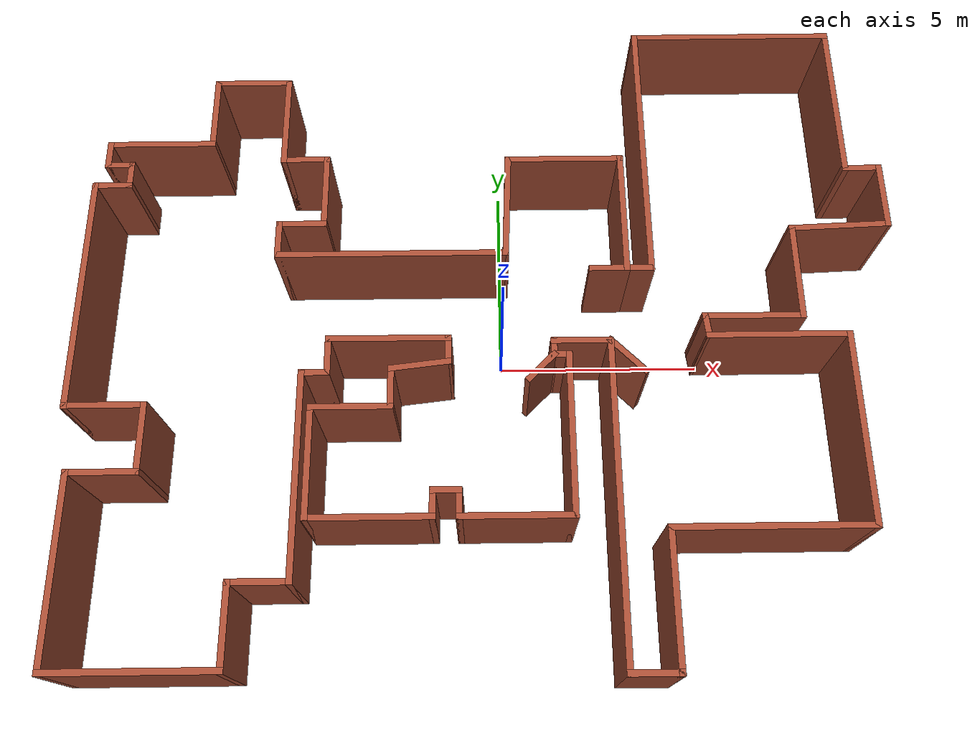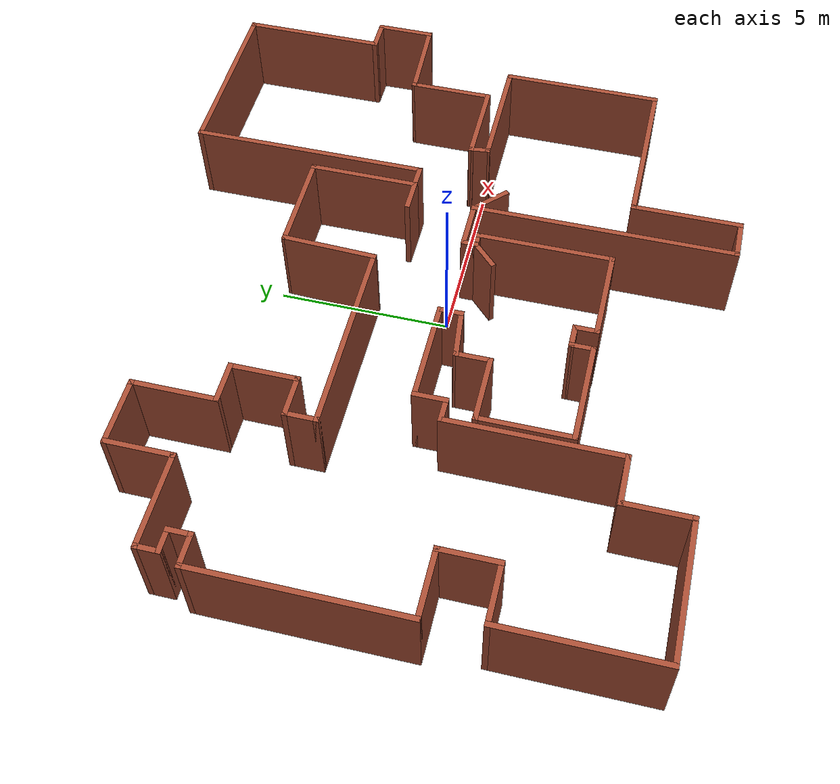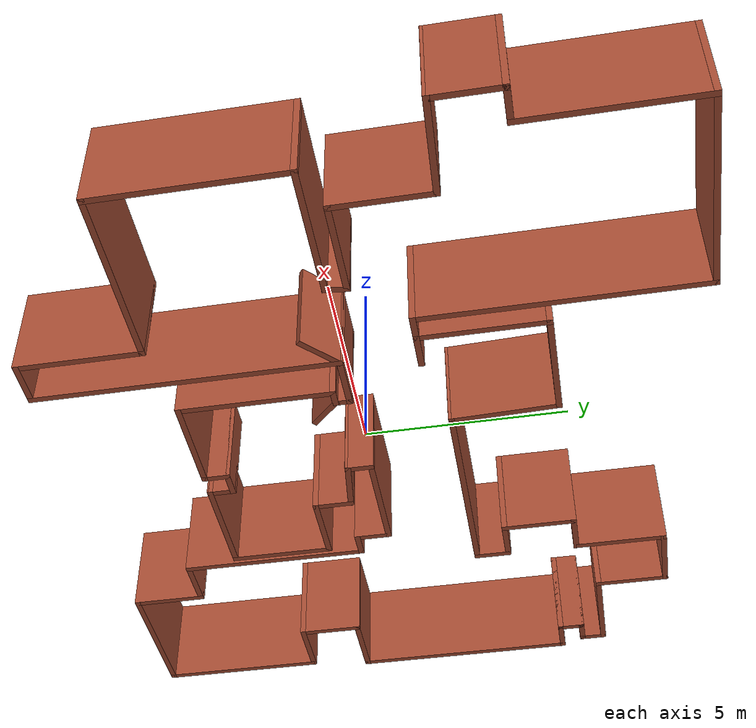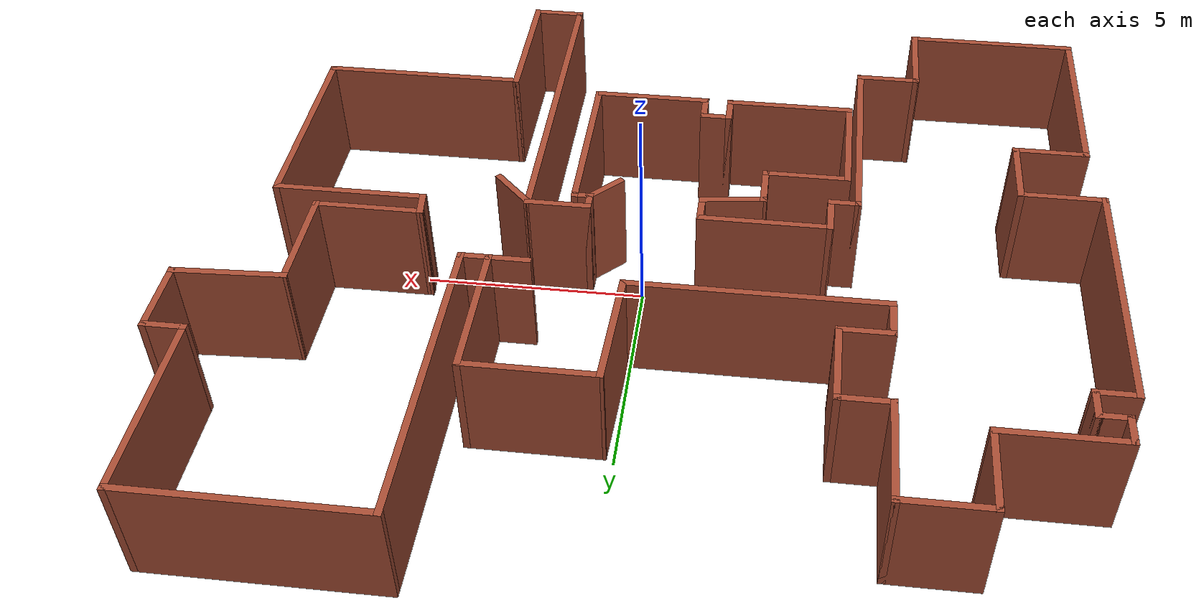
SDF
<?xml version='1.0'?>
<sdf version='1.6'>
  <model name='map_122'>
    <pose frame=''>-0.272558 0.382461 0 0 -0 0</pose>
    <link name='Wall_10'>
      <collision name='Wall_10_Collision'>
        <geometry>
          <box>
            <size>0.75 0.15 2.5</size>
          </box>
        </geometry>
        <pose frame=''>0 0 1.25 0 -0 0</pose>
      </collision>
      <visual name='Wall_10_Visual'>
        <pose frame=''>0 0 1.25 0 -0 0</pose>
        <geometry>
          <box>
            <size>0.75 0.15 2.5</size>
          </box>
        </geometry>
        <material>
          <script>
            <uri>file://media/materials/scripts/gazebo.material</uri>
            <name>Gazebo/Bricks</name>
          </script>
          <ambient>1 1 1 1</ambient>
        </material>
        <meta>
          <layer>0</layer>
        </meta>
      </visual>
      <pose frame=''>-9.05162 4.075 0 0 -0 -1.5708</pose>
    </link>
    <link name='Wall_11'>
      <collision name='Wall_11_Collision'>
        <geometry>
          <box>
            <size>1 0.15 2.5</size>
          </box>
        </geometry>
        <pose frame=''>0 0 1.25 0 -0 0</pose>
      </collision>
      <visual name='Wall_11_Visual'>
        <pose frame=''>0 0 1.25 0 -0 0</pose>
        <geometry>
          <box>
            <size>1 0.15 2.5</size>
          </box>
        </geometry>
        <material>
          <script>
            <uri>file://media/materials/scripts/gazebo.material</uri>
            <name>Gazebo/Bricks</name>
          </script>
          <ambient>1 1 1 1</ambient>
        </material>
        <meta>
          <layer>0</layer>
        </meta>
      </visual>
      <pose frame=''>-9.47662 3.775 0 0 -0 3.14159</pose>
    </link>
    <link name='Wall_12'>
      <collision name='Wall_12_Collision'>
        <geometry>
          <box>
            <size>6 0.15 2.5</size>
          </box>
        </geometry>
        <pose frame=''>0 0 1.25 0 -0 0</pose>
      </collision>
      <visual name='Wall_12_Visual'>
        <pose frame=''>0 0 1.25 0 -0 0</pose>
        <geometry>
          <box>
            <size>6 0.15 2.5</size>
          </box>
        </geometry>
        <material>
          <script>
            <uri>file://media/materials/scripts/gazebo.material</uri>
            <name>Gazebo/Bricks</name>
          </script>
          <ambient>1 1 1 1</ambient>
        </material>
        <meta>
          <layer>0</layer>
        </meta>
      </visual>
      <pose frame=''>-9.90162 0.85 0 0 -0 -1.5708</pose>
    </link>
    <link name='Wall_13'>
      <collision name='Wall_13_Collision'>
        <geometry>
          <box>
            <size>2 0.15 2.5</size>
          </box>
        </geometry>
        <pose frame=''>0 0 1.25 0 -0 0</pose>
      </collision>
      <visual name='Wall_13_Visual'>
        <pose frame=''>0 0 1.25 0 -0 0</pose>
        <geometry>
          <box>
            <size>2 0.15 2.5</size>
          </box>
        </geometry>
        <material>
          <script>
            <uri>file://media/materials/scripts/gazebo.material</uri>
            <name>Gazebo/Bricks</name>
          </script>
          <ambient>1 1 1 1</ambient>
        </material>
        <meta>
          <layer>0</layer>
        </meta>
      </visual>
      <pose frame=''>-8.97662 -2.075 0 0 -0 0</pose>
    </link>
    <link name='Wall_14'>
      <collision name='Wall_14_Collision'>
        <geometry>
          <box>
            <size>1.75 0.15 2.5</size>
          </box>
        </geometry>
        <pose frame=''>0 0 1.25 0 -0 0</pose>
      </collision>
      <visual name='Wall_14_Visual'>
        <pose frame=''>0 0 1.25 0 -0 0</pose>
        <geometry>
          <box>
            <size>1.75 0.15 2.5</size>
          </box>
        </geometry>
        <material>
          <script>
            <uri>file://media/materials/scripts/gazebo.material</uri>
            <name>Gazebo/Bricks</name>
          </script>
          <ambient>1 1 1 1</ambient>
        </material>
        <meta>
          <layer>0</layer>
        </meta>
      </visual>
      <pose frame=''>-8.05162 -2.875 0 0 -0 -1.5708</pose>
    </link>
    <link name='Wall_15'>
      <collision name='Wall_15_Collision'>
        <geometry>
          <box>
            <size>1.75 0.15 2.5</size>
          </box>
        </geometry>
        <pose frame=''>0 0 1.25 0 -0 0</pose>
      </collision>
      <visual name='Wall_15_Visual'>
        <pose frame=''>0 0 1.25 0 -0 0</pose>
        <geometry>
          <box>
            <size>1.75 0.15 2.5</size>
          </box>
        </geometry>
        <material>
          <script>
            <uri>file://media/materials/scripts/gazebo.material</uri>
            <name>Gazebo/Bricks</name>
          </script>
          <ambient>1 1 1 1</ambient>
        </material>
        <meta>
          <layer>0</layer>
        </meta>
      </visual>
      <pose frame=''>-8.85162 -3.675 0 0 -0 3.14159</pose>
    </link>
    <link name='Wall_16'>
      <collision name='Wall_16_Collision'>
        <geometry>
          <box>
            <size>4.5 0.15 2.5</size>
          </box>
        </geometry>
        <pose frame=''>0 0 1.25 0 -0 0</pose>
      </collision>
      <visual name='Wall_16_Visual'>
        <pose frame=''>0 0 1.25 0 -0 0</pose>
        <geometry>
          <box>
            <size>4.5 0.15 2.5</size>
          </box>
        </geometry>
        <material>
          <script>
            <uri>file://media/materials/scripts/gazebo.material</uri>
            <name>Gazebo/Bricks</name>
          </script>
          <ambient>1 1 1 1</ambient>
        </material>
        <meta>
          <layer>0</layer>
        </meta>
      </visual>
      <pose frame=''>-9.65162 -5.85 0 0 -0 -1.5708</pose>
    </link>
    <link name='Wall_17'>
      <collision name='Wall_17_Collision'>
        <geometry>
          <box>
            <size>4 0.15 2.5</size>
          </box>
        </geometry>
        <pose frame=''>0 0 1.25 0 -0 0</pose>
      </collision>
      <visual name='Wall_17_Visual'>
        <pose frame=''>0 0 1.25 0 -0 0</pose>
        <geometry>
          <box>
            <size>4 0.15 2.5</size>
          </box>
        </geometry>
        <material>
          <script>
            <uri>file://media/materials/scripts/gazebo.material</uri>
            <name>Gazebo/Bricks</name>
          </script>
          <ambient>1 1 1 1</ambient>
        </material>
        <meta>
          <layer>0</layer>
        </meta>
      </visual>
      <pose frame=''>-7.72662 -8.025 0 0 -0 0</pose>
    </link>
    <link name='Wall_18'>
      <collision name='Wall_18_Collision'>
        <geometry>
          <box>
            <size>2 0.15 2.5</size>
          </box>
        </geometry>
        <pose frame=''>0 0 1.25 0 -0 0</pose>
      </collision>
      <visual name='Wall_18_Visual'>
        <pose frame=''>0 0 1.25 0 -0 0</pose>
        <geometry>
          <box>
            <size>2 0.15 2.5</size>
          </box>
        </geometry>
        <material>
          <script>
            <uri>file://media/materials/scripts/gazebo.material</uri>
            <name>Gazebo/Bricks</name>
          </script>
          <ambient>1 1 1 1</ambient>
        </material>
        <meta>
          <layer>0</layer>
        </meta>
      </visual>
      <pose frame=''>-5.80162 -7.1 0 0 -0 1.5708</pose>
    </link>
    <link name='Wall_19'>
      <collision name='Wall_19_Collision'>
        <geometry>
          <box>
            <size>1.5 0.15 2.5</size>
          </box>
        </geometry>
        <pose frame=''>0 0 1.25 0 -0 0</pose>
      </collision>
      <visual name='Wall_19_Visual'>
        <pose frame=''>0 0 1.25 0 -0 0</pose>
        <geometry>
          <box>
            <size>1.5 0.15 2.5</size>
          </box>
        </geometry>
        <material>
          <script>
            <uri>file://media/materials/scripts/gazebo.material</uri>
            <name>Gazebo/Bricks</name>
          </script>
          <ambient>1 1 1 1</ambient>
        </material>
        <meta>
          <layer>0</layer>
        </meta>
      </visual>
      <pose frame=''>-5.12662 -6.175 0 0 -0 0</pose>
    </link>
    <link name='Wall_20'>
      <collision name='Wall_20_Collision'>
        <geometry>
          <box>
            <size>5 0.15 2.5</size>
          </box>
        </geometry>
        <pose frame=''>0 0 1.25 0 -0 0</pose>
      </collision>
      <visual name='Wall_20_Visual'>
        <pose frame=''>0 0 1.25 0 -0 0</pose>
        <geometry>
          <box>
            <size>5 0.15 2.5</size>
          </box>
        </geometry>
        <material>
          <script>
            <uri>file://media/materials/scripts/gazebo.material</uri>
            <name>Gazebo/Bricks</name>
          </script>
          <ambient>1 1 1 1</ambient>
        </material>
        <meta>
          <layer>0</layer>
        </meta>
      </visual>
      <pose frame=''>-4.45162 -3.75 0 0 -0 1.5708</pose>
    </link>
    <link name='Wall_21'>
      <collision name='Wall_21_Collision'>
        <geometry>
          <box>
            <size>0.75 0.15 2.5</size>
          </box>
        </geometry>
        <pose frame=''>0 0 1.25 0 -0 0</pose>
      </collision>
      <visual name='Wall_21_Visual'>
        <pose frame=''>0 0 1.25 0 -0 0</pose>
        <geometry>
          <box>
            <size>0.75 0.15 2.5</size>
          </box>
        </geometry>
        <material>
          <script>
            <uri>file://media/materials/scripts/gazebo.material</uri>
            <name>Gazebo/Bricks</name>
          </script>
          <ambient>1 1 1 1</ambient>
        </material>
        <meta>
          <layer>0</layer>
        </meta>
      </visual>
      <pose frame=''>-4.15162 -1.325 0 0 -0 0</pose>
    </link>
    <link name='Wall_22'>
      <collision name='Wall_22_Collision'>
        <geometry>
          <box>
            <size>1 0.15 2.5</size>
          </box>
        </geometry>
        <pose frame=''>0 0 1.25 0 -0 0</pose>
      </collision>
      <visual name='Wall_22_Visual'>
        <pose frame=''>0 0 1.25 0 -0 0</pose>
        <geometry>
          <box>
            <size>1 0.15 2.5</size>
          </box>
        </geometry>
        <material>
          <script>
            <uri>file://media/materials/scripts/gazebo.material</uri>
            <name>Gazebo/Bricks</name>
          </script>
          <ambient>1 1 1 1</ambient>
        </material>
        <meta>
          <layer>0</layer>
        </meta>
      </visual>
      <pose frame=''>-3.85162 -0.9 0 0 -0 1.5708</pose>
    </link>
    <link name='Wall_26'>
      <collision name='Wall_26_Collision'>
        <geometry>
          <box>
            <size>1.08818 0.15 2.5</size>
          </box>
        </geometry>
        <pose frame=''>0 0 1.25 0 -0 0</pose>
      </collision>
      <visual name='Wall_26_Visual'>
        <pose frame=''>0 0 1.25 0 -0 0</pose>
        <geometry>
          <box>
            <size>1.08818 0.15 2.5</size>
          </box>
        </geometry>
        <material>
          <script>
            <uri>file://media/materials/scripts/gazebo.material</uri>
            <name>Gazebo/Bricks</name>
          </script>
          <ambient>1 1 1 1</ambient>
        </material>
        <meta>
          <layer>0</layer>
        </meta>
      </visual>
      <pose frame=''>-2.35162 -1.70591 0 0 -0 -1.5708</pose>
    </link>
    <link name='Wall_27'>
      <collision name='Wall_27_Collision'>
        <geometry>
          <box>
            <size>2 0.15 2.5</size>
          </box>
        </geometry>
        <pose frame=''>0 0 1.25 0 -0 0</pose>
      </collision>
      <visual name='Wall_27_Visual'>
        <pose frame=''>0 0 1.25 0 -0 0</pose>
        <geometry>
          <box>
            <size>2 0.15 2.5</size>
          </box>
        </geometry>
        <material>
          <script>
            <uri>file://media/materials/scripts/gazebo.material</uri>
            <name>Gazebo/Bricks</name>
          </script>
          <ambient>1 1 1 1</ambient>
        </material>
        <meta>
          <layer>0</layer>
        </meta>
      </visual>
      <pose frame=''>-3.27662 -2.175 0 0 -0 3.14159</pose>
    </link>
    <link name='Wall_28'>
      <collision name='Wall_28_Collision'>
        <geometry>
          <box>
            <size>2.75 0.15 2.5</size>
          </box>
        </geometry>
        <pose frame=''>0 0 1.25 0 -0 0</pose>
      </collision>
      <visual name='Wall_28_Visual'>
        <pose frame=''>0 0 1.25 0 -0 0</pose>
        <geometry>
          <box>
            <size>2.75 0.15 2.5</size>
          </box>
        </geometry>
        <material>
          <script>
            <uri>file://media/materials/scripts/gazebo.material</uri>
            <name>Gazebo/Bricks</name>
          </script>
          <ambient>1 1 1 1</ambient>
        </material>
        <meta>
          <layer>0</layer>
        </meta>
      </visual>
      <pose frame=''>-4.20162 -3.475 0 0 -0 -1.5708</pose>
    </link>
    <link name='Wall_29'>
      <collision name='Wall_29_Collision'>
        <geometry>
          <box>
            <size>3 0.15 2.5</size>
          </box>
        </geometry>
        <pose frame=''>0 0 1.25 0 -0 0</pose>
      </collision>
      <visual name='Wall_29_Visual'>
        <pose frame=''>0 0 1.25 0 -0 0</pose>
        <geometry>
          <box>
            <size>3 0.15 2.5</size>
          </box>
        </geometry>
        <material>
          <script>
            <uri>file://media/materials/scripts/gazebo.material</uri>
            <name>Gazebo/Bricks</name>
          </script>
          <ambient>1 1 1 1</ambient>
        </material>
        <meta>
          <layer>0</layer>
        </meta>
      </visual>
      <pose frame=''>-2.77662 -4.775 0 0 -0 0</pose>
    </link>
    <link name='Wall_30'>
      <collision name='Wall_30_Collision'>
        <geometry>
          <box>
            <size>0.75 0.15 2.5</size>
          </box>
        </geometry>
        <pose frame=''>0 0 1.25 0 -0 0</pose>
      </collision>
      <visual name='Wall_30_Visual'>
        <pose frame=''>0 0 1.25 0 -0 0</pose>
        <geometry>
          <box>
            <size>0.75 0.15 2.5</size>
          </box>
        </geometry>
        <material>
          <script>
            <uri>file://media/materials/scripts/gazebo.material</uri>
            <name>Gazebo/Bricks</name>
          </script>
          <ambient>1 1 1 1</ambient>
        </material>
        <meta>
          <layer>0</layer>
        </meta>
      </visual>
      <pose frame=''>-1.35162 -4.475 0 0 -0 1.5708</pose>
    </link>
    <link name='Wall_31'>
      <collision name='Wall_31_Collision'>
        <geometry>
          <box>
            <size>0.75 0.15 2.5</size>
          </box>
        </geometry>
        <pose frame=''>0 0 1.25 0 -0 0</pose>
      </collision>
      <visual name='Wall_31_Visual'>
        <pose frame=''>0 0 1.25 0 -0 0</pose>
        <geometry>
          <box>
            <size>0.75 0.15 2.5</size>
          </box>
        </geometry>
        <material>
          <script>
            <uri>file://media/materials/scripts/gazebo.material</uri>
            <name>Gazebo/Bricks</name>
          </script>
          <ambient>1 1 1 1</ambient>
        </material>
        <meta>
          <layer>0</layer>
        </meta>
      </visual>
      <pose frame=''>-1.05162 -4.175 0 0 -0 0</pose>
    </link>
    <link name='Wall_32'>
      <collision name='Wall_32_Collision'>
        <geometry>
          <box>
            <size>0.75 0.15 2.5</size>
          </box>
        </geometry>
        <pose frame=''>0 0 1.25 0 -0 0</pose>
      </collision>
      <visual name='Wall_32_Visual'>
        <pose frame=''>0 0 1.25 0 -0 0</pose>
        <geometry>
          <box>
            <size>0.75 0.15 2.5</size>
          </box>
        </geometry>
        <material>
          <script>
            <uri>file://media/materials/scripts/gazebo.material</uri>
            <name>Gazebo/Bricks</name>
          </script>
          <ambient>1 1 1 1</ambient>
        </material>
        <meta>
          <layer>0</layer>
        </meta>
      </visual>
      <pose frame=''>-0.751622 -4.475 0 0 -0 -1.5708</pose>
    </link>
    <link name='Wall_33'>
      <collision name='Wall_33_Collision'>
        <geometry>
          <box>
            <size>2.75 0.15 2.5</size>
          </box>
        </geometry>
        <pose frame=''>0 0 1.25 0 -0 0</pose>
      </collision>
      <visual name='Wall_33_Visual'>
        <pose frame=''>0 0 1.25 0 -0 0</pose>
        <geometry>
          <box>
            <size>2.75 0.15 2.5</size>
          </box>
        </geometry>
        <material>
          <script>
            <uri>file://media/materials/scripts/gazebo.material</uri>
            <name>Gazebo/Bricks</name>
          </script>
          <ambient>1 1 1 1</ambient>
        </material>
        <meta>
          <layer>0</layer>
        </meta>
      </visual>
      <pose frame=''>0.548378 -4.775 0 0 -0 0</pose>
    </link>
    <link name='Wall_38'>
      <collision name='Wall_38_Collision'>
        <geometry>
          <box>
            <size>4 0.15 2.5</size>
          </box>
        </geometry>
        <pose frame=''>0 0 1.25 0 -0 0</pose>
      </collision>
      <visual name='Wall_38_Visual'>
        <pose frame=''>0 0 1.25 0 -0 0</pose>
        <geometry>
          <box>
            <size>4 0.15 2.5</size>
          </box>
        </geometry>
        <material>
          <script>
            <uri>file://media/materials/scripts/gazebo.material</uri>
            <name>Gazebo/Bricks</name>
          </script>
          <ambient>1 1 1 1</ambient>
        </material>
        <meta>
          <layer>0</layer>
        </meta>
      </visual>
      <pose frame=''>1.84838 -2.85 0 0 -0 1.5708</pose>
    </link>
    <link name='Wall_39'>
      <collision name='Wall_39_Collision'>
        <geometry>
          <box>
            <size>0.5 0.15 2.5</size>
          </box>
        </geometry>
        <pose frame=''>0 0 1.25 0 -0 0</pose>
      </collision>
      <visual name='Wall_39_Visual'>
        <pose frame=''>0 0 1.25 0 -0 0</pose>
        <geometry>
          <box>
            <size>0.5 0.15 2.5</size>
          </box>
        </geometry>
        <material>
          <script>
            <uri>file://media/materials/scripts/gazebo.material</uri>
            <name>Gazebo/Bricks</name>
          </script>
          <ambient>1 1 1 1</ambient>
        </material>
        <meta>
          <layer>0</layer>
        </meta>
      </visual>
      <pose frame=''>1.67338 -0.925 0 0 -0 3.14159</pose>
    </link>
    <link name='Wall_40'>
      <collision name='Wall_40_Collision'>
        <geometry>
          <box>
            <size>0.5 0.15 2.5</size>
          </box>
        </geometry>
        <pose frame=''>0 0 1.25 0 -0 0</pose>
      </collision>
      <visual name='Wall_40_Visual'>
        <pose frame=''>0 0 1.25 0 -0 0</pose>
        <geometry>
          <box>
            <size>0.5 0.15 2.5</size>
          </box>
        </geometry>
        <material>
          <script>
            <uri>file://media/materials/scripts/gazebo.material</uri>
            <name>Gazebo/Bricks</name>
          </script>
          <ambient>1 1 1 1</ambient>
        </material>
        <meta>
          <layer>0</layer>
        </meta>
      </visual>
      <pose frame=''>1.49838 -0.75 0 0 -0 1.5708</pose>
    </link>
    <link name='Wall_44'>
      <collision name='Wall_44_Collision'>
        <geometry>
          <box>
            <size>3.25 0.15 2.5</size>
          </box>
        </geometry>
        <pose frame=''>0 0 1.25 0 -0 0</pose>
      </collision>
      <visual name='Wall_44_Visual'>
        <pose frame=''>0 0 1.25 0 -0 0</pose>
        <geometry>
          <box>
            <size>3.25 0.15 2.5</size>
          </box>
        </geometry>
        <material>
          <script>
            <uri>file://media/materials/scripts/gazebo.material</uri>
            <name>Gazebo/Bricks</name>
          </script>
          <ambient>1 1 1 1</ambient>
        </material>
        <meta>
          <layer>0</layer>
        </meta>
      </visual>
      <pose frame=''>3.94838 -6.625 0 0 -0 1.5708</pose>
    </link>
    <link name='Wall_45'>
      <collision name='Wall_45_Collision'>
        <geometry>
          <box>
            <size>4.75 0.15 2.5</size>
          </box>
        </geometry>
        <pose frame=''>0 0 1.25 0 -0 0</pose>
      </collision>
      <visual name='Wall_45_Visual'>
        <pose frame=''>0 0 1.25 0 -0 0</pose>
        <geometry>
          <box>
            <size>4.75 0.15 2.5</size>
          </box>
        </geometry>
        <material>
          <script>
            <uri>file://media/materials/scripts/gazebo.material</uri>
            <name>Gazebo/Bricks</name>
          </script>
          <ambient>1 1 1 1</ambient>
        </material>
        <meta>
          <layer>0</layer>
        </meta>
      </visual>
      <pose frame=''>6.24838 -5.075 0 0 -0 0</pose>
    </link>
    <link name='Wall_46'>
      <collision name='Wall_46_Collision'>
        <geometry>
          <box>
            <size>4.75 0.15 2.5</size>
          </box>
        </geometry>
        <pose frame=''>0 0 1.25 0 -0 0</pose>
      </collision>
      <visual name='Wall_46_Visual'>
        <pose frame=''>0 0 1.25 0 -0 0</pose>
        <geometry>
          <box>
            <size>4.75 0.15 2.5</size>
          </box>
        </geometry>
        <material>
          <script>
            <uri>file://media/materials/scripts/gazebo.material</uri>
            <name>Gazebo/Bricks</name>
          </script>
          <ambient>1 1 1 1</ambient>
        </material>
        <meta>
          <layer>0</layer>
        </meta>
      </visual>
      <pose frame=''>8.54838 -2.775 0 0 -0 1.5708</pose>
    </link>
    <link name='Wall_47'>
      <collision name='Wall_47_Collision'>
        <geometry>
          <box>
            <size>3.5 0.15 2.5</size>
          </box>
        </geometry>
        <pose frame=''>0 0 1.25 0 -0 0</pose>
      </collision>
      <visual name='Wall_47_Visual'>
        <pose frame=''>0 0 1.25 0 -0 0</pose>
        <geometry>
          <box>
            <size>3.5 0.15 2.5</size>
          </box>
        </geometry>
        <material>
          <script>
            <uri>file://media/materials/scripts/gazebo.material</uri>
            <name>Gazebo/Bricks</name>
          </script>
          <ambient>1 1 1 1</ambient>
        </material>
        <meta>
          <layer>0</layer>
        </meta>
      </visual>
      <pose frame=''>6.87338 -0.475 0 0 -0 3.14159</pose>
    </link>
    <link name='Wall_51'>
      <collision name='Wall_51_Collision'>
        <geometry>
          <box>
            <size>0.646458 0.15 2.5</size>
          </box>
        </geometry>
        <pose frame=''>0 0 1.25 0 -0 0</pose>
      </collision>
      <visual name='Wall_51_Visual'>
        <pose frame=''>0 0 1.25 0 -0 0</pose>
        <geometry>
          <box>
            <size>0.646458 0.15 2.5</size>
          </box>
        </geometry>
        <material>
          <script>
            <uri>file://media/materials/scripts/gazebo.material</uri>
            <name>Gazebo/Bricks</name>
          </script>
          <ambient>1 1 1 1</ambient>
        </material>
        <meta>
          <layer>0</layer>
        </meta>
      </visual>
      <pose frame=''>5.17178 -0.2282 0 0 -0 1.67816</pose>
    </link>
    <link name='Wall_55'>
      <collision name='Wall_55_Collision'>
        <geometry>
          <box>
            <size>1.75 0.15 2.5</size>
          </box>
        </geometry>
        <pose frame=''>0 0 1.25 0 -0 0</pose>
      </collision>
      <visual name='Wall_55_Visual'>
        <pose frame=''>0 0 1.25 0 -0 0</pose>
        <geometry>
          <box>
            <size>1.75 0.15 2.5</size>
          </box>
        </geometry>
        <material>
          <script>
            <uri>file://media/materials/scripts/gazebo.material</uri>
            <name>Gazebo/Bricks</name>
          </script>
          <ambient>1 1 1 1</ambient>
        </material>
        <meta>
          <layer>0</layer>
        </meta>
      </visual>
      <pose frame=''>9.89838 3.275 0 0 -0 1.5708</pose>
    </link>
    <link name='Wall_56'>
      <collision name='Wall_56_Collision'>
        <geometry>
          <box>
            <size>1 0.15 2.5</size>
          </box>
        </geometry>
        <pose frame=''>0 0 1.25 0 -0 0</pose>
      </collision>
      <visual name='Wall_56_Visual'>
        <pose frame=''>0 0 1.25 0 -0 0</pose>
        <geometry>
          <box>
            <size>1 0.15 2.5</size>
          </box>
        </geometry>
        <material>
          <script>
            <uri>file://media/materials/scripts/gazebo.material</uri>
            <name>Gazebo/Bricks</name>
          </script>
          <ambient>1 1 1 1</ambient>
        </material>
        <meta>
          <layer>0</layer>
        </meta>
      </visual>
      <pose frame=''>9.47338 4.075 0 0 -0 3.14159</pose>
    </link>
    <link name='Wall_57'>
      <collision name='Wall_57_Collision'>
        <geometry>
          <box>
            <size>4.25 0.15 2.5</size>
          </box>
        </geometry>
        <pose frame=''>0 0 1.25 0 -0 0</pose>
      </collision>
      <visual name='Wall_57_Visual'>
        <pose frame=''>0 0 1.25 0 -0 0</pose>
        <geometry>
          <box>
            <size>4.25 0.15 2.5</size>
          </box>
        </geometry>
        <material>
          <script>
            <uri>file://media/materials/scripts/gazebo.material</uri>
            <name>Gazebo/Bricks</name>
          </script>
          <ambient>1 1 1 1</ambient>
        </material>
        <meta>
          <layer>0</layer>
        </meta>
      </visual>
      <pose frame=''>9.04838 6.125 0 0 -0 1.5708</pose>
    </link>
    <link name='Wall_6'>
      <collision name='Wall_6_Collision'>
        <geometry>
          <box>
            <size>2 0.15 2.5</size>
          </box>
        </geometry>
        <pose frame=''>0 0 1.25 0 -0 0</pose>
      </collision>
      <visual name='Wall_6_Visual'>
        <pose frame=''>0 0 1.25 0 -0 0</pose>
        <geometry>
          <box>
            <size>2 0.15 2.5</size>
          </box>
        </geometry>
        <material>
          <script>
            <uri>file://media/materials/scripts/gazebo.material</uri>
            <name>Gazebo/Bricks</name>
          </script>
          <ambient>1 1 1 1</ambient>
        </material>
        <meta>
          <layer>0</layer>
        </meta>
      </visual>
      <pose frame=''>-7.05162 5.9 0 0 -0 -1.5708</pose>
    </link>
    <link name='Wall_60'>
      <collision name='Wall_60_Collision'>
        <geometry>
          <box>
            <size>2.5 0.15 2.5</size>
          </box>
        </geometry>
        <pose frame=''>0 0 1.25 0 -0 0</pose>
      </collision>
      <visual name='Wall_60_Visual'>
        <pose frame=''>0 0 1.25 0 -0 0</pose>
        <geometry>
          <box>
            <size>2.5 0.15 2.5</size>
          </box>
        </geometry>
        <material>
          <script>
            <uri>file://media/materials/scripts/gazebo.material</uri>
            <name>Gazebo/Bricks</name>
          </script>
          <ambient>1 1 1 1</ambient>
        </material>
        <meta>
          <layer>0</layer>
        </meta>
      </visual>
      <pose frame=''>6.32018 0.018599 0 0 -0 0</pose>
    </link>
    <link name='Wall_61'>
      <collision name='Wall_61_Collision'>
        <geometry>
          <box>
            <size>2.5 0.15 2.5</size>
          </box>
        </geometry>
        <pose frame=''>0 0 1.25 0 -0 0</pose>
      </collision>
      <visual name='Wall_61_Visual'>
        <pose frame=''>0 0 1.25 0 -0 0</pose>
        <geometry>
          <box>
            <size>2.5 0.15 2.5</size>
          </box>
        </geometry>
        <material>
          <script>
            <uri>file://media/materials/scripts/gazebo.material</uri>
            <name>Gazebo/Bricks</name>
          </script>
          <ambient>1 1 1 1</ambient>
        </material>
        <meta>
          <layer>0</layer>
        </meta>
      </visual>
      <pose frame=''>7.49518 1.1936 0 0 -0 1.5708</pose>
    </link>
    <link name='Wall_62'>
      <collision name='Wall_62_Collision'>
        <geometry>
          <box>
            <size>2.55556 0.15 2.5</size>
          </box>
        </geometry>
        <pose frame=''>0 0 1.25 0 -0 0</pose>
      </collision>
      <visual name='Wall_62_Visual'>
        <pose frame=''>0 0 1.25 0 -0 0</pose>
        <geometry>
          <box>
            <size>2.55556 0.15 2.5</size>
          </box>
        </geometry>
        <material>
          <script>
            <uri>file://media/materials/scripts/gazebo.material</uri>
            <name>Gazebo/Bricks</name>
          </script>
          <ambient>1 1 1 1</ambient>
        </material>
        <meta>
          <layer>0</layer>
        </meta>
      </visual>
      <pose frame=''>8.69678 2.4218 0 0 -0 0.044246</pose>
    </link>
    <link name='Wall_64'>
      <collision name='Wall_64_Collision'>
        <geometry>
          <box>
            <size>5.25 0.15 2.5</size>
          </box>
        </geometry>
        <pose frame=''>0 0 1.25 0 -0 0</pose>
      </collision>
      <visual name='Wall_64_Visual'>
        <pose frame=''>0 0 1.25 0 -0 0</pose>
        <geometry>
          <box>
            <size>5.25 0.15 2.5</size>
          </box>
        </geometry>
        <material>
          <script>
            <uri>file://media/materials/scripts/gazebo.material</uri>
            <name>Gazebo/Bricks</name>
          </script>
          <ambient>1 1 1 1</ambient>
        </material>
        <meta>
          <layer>0</layer>
        </meta>
      </visual>
      <pose frame=''>6.49838 8.175 0 0 -0 3.14159</pose>
    </link>
    <link name='Wall_65'>
      <collision name='Wall_65_Collision'>
        <geometry>
          <box>
            <size>7 0.15 2.5</size>
          </box>
        </geometry>
        <pose frame=''>0 0 1.25 0 -0 0</pose>
      </collision>
      <visual name='Wall_65_Visual'>
        <pose frame=''>0 0 1.25 0 -0 0</pose>
        <geometry>
          <box>
            <size>7 0.15 2.5</size>
          </box>
        </geometry>
        <material>
          <script>
            <uri>file://media/materials/scripts/gazebo.material</uri>
            <name>Gazebo/Bricks</name>
          </script>
          <ambient>1 1 1 1</ambient>
        </material>
        <meta>
          <layer>0</layer>
        </meta>
      </visual>
      <pose frame=''>3.94838 4.75 0 0 -0 -1.5708</pose>
    </link>
    <link name='Wall_66'>
      <collision name='Wall_66_Collision'>
        <geometry>
          <box>
            <size>0.75 0.15 2.5</size>
          </box>
        </geometry>
        <pose frame=''>0 0 1.25 0 -0 0</pose>
      </collision>
      <visual name='Wall_66_Visual'>
        <pose frame=''>0 0 1.25 0 -0 0</pose>
        <geometry>
          <box>
            <size>0.75 0.15 2.5</size>
          </box>
        </geometry>
        <material>
          <script>
            <uri>file://media/materials/scripts/gazebo.material</uri>
            <name>Gazebo/Bricks</name>
          </script>
          <ambient>1 1 1 1</ambient>
        </material>
        <meta>
          <layer>0</layer>
        </meta>
      </visual>
      <pose frame=''>3.64838 1.325 0 0 -0 3.14159</pose>
    </link>
    <link name='Wall_67'>
      <collision name='Wall_67_Collision'>
        <geometry>
          <box>
            <size>3.25 0.15 2.5</size>
          </box>
        </geometry>
        <pose frame=''>0 0 1.25 0 -0 0</pose>
      </collision>
      <visual name='Wall_67_Visual'>
        <pose frame=''>0 0 1.25 0 -0 0</pose>
        <geometry>
          <box>
            <size>3.25 0.15 2.5</size>
          </box>
        </geometry>
        <material>
          <script>
            <uri>file://media/materials/scripts/gazebo.material</uri>
            <name>Gazebo/Bricks</name>
          </script>
          <ambient>1 1 1 1</ambient>
        </material>
        <meta>
          <layer>0</layer>
        </meta>
      </visual>
      <pose frame=''>3.34838 2.875 0 0 -0 1.5708</pose>
    </link>
    <link name='Wall_68'>
      <collision name='Wall_68_Collision'>
        <geometry>
          <box>
            <size>3 0.15 2.5</size>
          </box>
        </geometry>
        <pose frame=''>0 0 1.25 0 -0 0</pose>
      </collision>
      <visual name='Wall_68_Visual'>
        <pose frame=''>0 0 1.25 0 -0 0</pose>
        <geometry>
          <box>
            <size>3 0.15 2.5</size>
          </box>
        </geometry>
        <material>
          <script>
            <uri>file://media/materials/scripts/gazebo.material</uri>
            <name>Gazebo/Bricks</name>
          </script>
          <ambient>1 1 1 1</ambient>
        </material>
        <meta>
          <layer>0</layer>
        </meta>
      </visual>
      <pose frame=''>1.92338 4.425 0 0 -0 3.14159</pose>
    </link>
    <link name='Wall_7'>
      <collision name='Wall_7_Collision'>
        <geometry>
          <box>
            <size>2.75 0.15 2.5</size>
          </box>
        </geometry>
        <pose frame=''>0 0 1.25 0 -0 0</pose>
      </collision>
      <visual name='Wall_7_Visual'>
        <pose frame=''>0 0 1.25 0 -0 0</pose>
        <geometry>
          <box>
            <size>2.75 0.15 2.5</size>
          </box>
        </geometry>
        <material>
          <script>
            <uri>file://media/materials/scripts/gazebo.material</uri>
            <name>Gazebo/Bricks</name>
          </script>
          <ambient>1 1 1 1</ambient>
        </material>
        <meta>
          <layer>0</layer>
        </meta>
      </visual>
      <pose frame=''>-8.35162 4.975 0 0 -0 3.14159</pose>
    </link>
    <link name='Wall_72'>
      <collision name='Wall_72_Collision'>
        <geometry>
          <box>
            <size>2 0.15 2.5</size>
          </box>
        </geometry>
        <pose frame=''>0 0 1.25 0 -0 0</pose>
      </collision>
      <visual name='Wall_72_Visual'>
        <pose frame=''>0 0 1.25 0 -0 0</pose>
        <geometry>
          <box>
            <size>2 0.15 2.5</size>
          </box>
        </geometry>
        <material>
          <script>
            <uri>file://media/materials/scripts/gazebo.material</uri>
            <name>Gazebo/Bricks</name>
          </script>
          <ambient>1 1 1 1</ambient>
        </material>
        <meta>
          <layer>0</layer>
        </meta>
      </visual>
      <pose frame=''>-6.12662 6.825 0 0 -0 0</pose>
    </link>
    <link name='Wall_73'>
      <collision name='Wall_73_Collision'>
        <geometry>
          <box>
            <size>2.5 0.15 2.5</size>
          </box>
        </geometry>
        <pose frame=''>0 0 1.25 0 -0 0</pose>
      </collision>
      <visual name='Wall_73_Visual'>
        <pose frame=''>0 0 1.25 0 -0 0</pose>
        <geometry>
          <box>
            <size>2.5 0.15 2.5</size>
          </box>
        </geometry>
        <material>
          <script>
            <uri>file://media/materials/scripts/gazebo.material</uri>
            <name>Gazebo/Bricks</name>
          </script>
          <ambient>1 1 1 1</ambient>
        </material>
        <meta>
          <layer>0</layer>
        </meta>
      </visual>
      <pose frame=''>-5.20162 5.65 0 0 -0 -1.5708</pose>
    </link>
    <link name='Wall_74'>
      <collision name='Wall_74_Collision'>
        <geometry>
          <box>
            <size>1.25 0.15 2.5</size>
          </box>
        </geometry>
        <pose frame=''>0 0 1.25 0 -0 0</pose>
      </collision>
      <visual name='Wall_74_Visual'>
        <pose frame=''>0 0 1.25 0 -0 0</pose>
        <geometry>
          <box>
            <size>1.25 0.15 2.5</size>
          </box>
        </geometry>
        <material>
          <script>
            <uri>file://media/materials/scripts/gazebo.material</uri>
            <name>Gazebo/Bricks</name>
          </script>
          <ambient>1 1 1 1</ambient>
        </material>
        <meta>
          <layer>0</layer>
        </meta>
      </visual>
      <pose frame=''>-4.65162 4.475 0 0 -0 0</pose>
    </link>
    <link name='Wall_75'>
      <collision name='Wall_75_Collision'>
        <geometry>
          <box>
            <size>2 0.15 2.5</size>
          </box>
        </geometry>
        <pose frame=''>0 0 1.25 0 -0 0</pose>
      </collision>
      <visual name='Wall_75_Visual'>
        <pose frame=''>0 0 1.25 0 -0 0</pose>
        <geometry>
          <box>
            <size>2 0.15 2.5</size>
          </box>
        </geometry>
        <material>
          <script>
            <uri>file://media/materials/scripts/gazebo.material</uri>
            <name>Gazebo/Bricks</name>
          </script>
          <ambient>1 1 1 1</ambient>
        </material>
        <meta>
          <layer>0</layer>
        </meta>
      </visual>
      <pose frame=''>-4.10162 3.55 0 0 -0 -1.5708</pose>
    </link>
    <link name='Wall_76'>
      <collision name='Wall_76_Collision'>
        <geometry>
          <box>
            <size>1.25 0.15 2.5</size>
          </box>
        </geometry>
        <pose frame=''>0 0 1.25 0 -0 0</pose>
      </collision>
      <visual name='Wall_76_Visual'>
        <pose frame=''>0 0 1.25 0 -0 0</pose>
        <geometry>
          <box>
            <size>1.25 0.15 2.5</size>
          </box>
        </geometry>
        <material>
          <script>
            <uri>file://media/materials/scripts/gazebo.material</uri>
            <name>Gazebo/Bricks</name>
          </script>
          <ambient>1 1 1 1</ambient>
        </material>
        <meta>
          <layer>0</layer>
        </meta>
      </visual>
      <pose frame=''>-4.65162 2.625 0 0 -0 3.14159</pose>
    </link>
    <link name='Wall_77'>
      <collision name='Wall_77_Collision'>
        <geometry>
          <box>
            <size>1 0.15 2.5</size>
          </box>
        </geometry>
        <pose frame=''>0 0 1.25 0 -0 0</pose>
      </collision>
      <visual name='Wall_77_Visual'>
        <pose frame=''>0 0 1.25 0 -0 0</pose>
        <geometry>
          <box>
            <size>1 0.15 2.5</size>
          </box>
        </geometry>
        <material>
          <script>
            <uri>file://media/materials/scripts/gazebo.material</uri>
            <name>Gazebo/Bricks</name>
          </script>
          <ambient>1 1 1 1</ambient>
        </material>
        <meta>
          <layer>0</layer>
        </meta>
      </visual>
      <pose frame=''>-5.20162 2.2 0 0 -0 -1.5708</pose>
    </link>
    <link name='Wall_79'>
      <collision name='Wall_79_Collision'>
        <geometry>
          <box>
            <size>5.75 0.15 2.5</size>
          </box>
        </geometry>
        <pose frame=''>0 0 1.25 0 -0 0</pose>
      </collision>
      <visual name='Wall_79_Visual'>
        <pose frame=''>0 0 1.25 0 -0 0</pose>
        <geometry>
          <box>
            <size>5.75 0.15 2.5</size>
          </box>
        </geometry>
        <material>
          <script>
            <uri>file://media/materials/scripts/gazebo.material</uri>
            <name>Gazebo/Bricks</name>
          </script>
          <ambient>1 1 1 1</ambient>
        </material>
        <meta>
          <layer>0</layer>
        </meta>
      </visual>
      <pose frame=''>-2.40162 1.775 0 0 -0 0</pose>
    </link>
    <link name='Wall_8'>
      <collision name='Wall_8_Collision'>
        <geometry>
          <box>
            <size>0.75 0.15 2.5</size>
          </box>
        </geometry>
        <pose frame=''>0 0 1.25 0 -0 0</pose>
      </collision>
      <visual name='Wall_8_Visual'>
        <pose frame=''>0 0 1.25 0 -0 0</pose>
        <geometry>
          <box>
            <size>0.75 0.15 2.5</size>
          </box>
        </geometry>
        <material>
          <script>
            <uri>file://media/materials/scripts/gazebo.material</uri>
            <name>Gazebo/Bricks</name>
          </script>
          <ambient>1 1 1 1</ambient>
        </material>
        <meta>
          <layer>0</layer>
        </meta>
      </visual>
      <pose frame=''>-9.65162 4.675 0 0 -0 -1.5708</pose>
    </link>
    <link name='Wall_80'>
      <collision name='Wall_80_Collision'>
        <geometry>
          <box>
            <size>2.80189 0.15 2.5</size>
          </box>
        </geometry>
        <pose frame=''>0 0 1.25 0 -0 0</pose>
      </collision>
      <visual name='Wall_80_Visual'>
        <pose frame=''>0 0 1.25 0 -0 0</pose>
        <geometry>
          <box>
            <size>2.80189 0.15 2.5</size>
          </box>
        </geometry>
        <material>
          <script>
            <uri>file://media/materials/scripts/gazebo.material</uri>
            <name>Gazebo/Bricks</name>
          </script>
          <ambient>1 1 1 1</ambient>
        </material>
        <meta>
          <layer>0</layer>
        </meta>
      </visual>
      <pose frame=''>0.448378 3.1 0 0 -0 1.53308</pose>
    </link>
    <link name='Wall_82'>
      <collision name='Wall_82_Collision'>
        <geometry>
          <box>
            <size>3 0.15 2.5</size>
          </box>
        </geometry>
        <pose frame=''>0 0 1.25 0 -0 0</pose>
      </collision>
      <visual name='Wall_82_Visual'>
        <pose frame=''>0 0 1.25 0 -0 0</pose>
        <geometry>
          <box>
            <size>3 0.15 2.5</size>
          </box>
        </geometry>
        <material>
          <script>
            <uri>file://media/materials/scripts/gazebo.material</uri>
            <name>Gazebo/Bricks</name>
          </script>
          <ambient>1 1 1 1</ambient>
        </material>
        <meta>
          <layer>0</layer>
        </meta>
      </visual>
      <pose frame=''>-2.42662 -0.475 0 0 -0 0</pose>
    </link>
    <link name='Wall_83'>
      <collision name='Wall_83_Collision'>
        <geometry>
          <box>
            <size>0.75 0.15 2.5</size>
          </box>
        </geometry>
        <pose frame=''>0 0 1.25 0 -0 0</pose>
      </collision>
      <visual name='Wall_83_Visual'>
        <pose frame=''>0 0 1.25 0 -0 0</pose>
        <geometry>
          <box>
            <size>0.75 0.15 2.5</size>
          </box>
        </geometry>
        <material>
          <script>
            <uri>file://media/materials/scripts/gazebo.material</uri>
            <name>Gazebo/Bricks</name>
          </script>
          <ambient>1 1 1 1</ambient>
        </material>
        <meta>
          <layer>0</layer>
        </meta>
      </visual>
      <pose frame=''>-1.00162 -0.775 0 0 -0 -1.5708</pose>
    </link>
    <link name='Wall_84'>
      <collision name='Wall_84_Collision'>
        <geometry>
          <box>
            <size>1.50966 0.15 2.5</size>
          </box>
        </geometry>
        <pose frame=''>0 0 1.25 0 -0 0</pose>
      </collision>
      <visual name='Wall_84_Visual'>
        <pose frame=''>0 0 1.25 0 -0 0</pose>
        <geometry>
          <box>
            <size>1.50966 0.15 2.5</size>
          </box>
        </geometry>
        <material>
          <script>
            <uri>file://media/materials/scripts/gazebo.material</uri>
            <name>Gazebo/Bricks</name>
          </script>
          <ambient>1 1 1 1</ambient>
        </material>
        <meta>
          <layer>0</layer>
        </meta>
      </visual>
      <pose frame=''>-1.67662 -1.15591 0 0 -0 -3.02229</pose>
    </link>
    <link name='Wall_86'>
      <collision name='Wall_86_Collision'>
        <geometry>
          <box>
            <size>1 0.15 2.5</size>
          </box>
        </geometry>
        <pose frame=''>0 0 1.25 0 -0 0</pose>
      </collision>
      <visual name='Wall_86_Visual'>
        <pose frame=''>0 0 1.25 0 -0 0</pose>
        <geometry>
          <box>
            <size>1 0.15 2.5</size>
          </box>
        </geometry>
        <material>
          <script>
            <uri>file://media/materials/scripts/gazebo.material</uri>
            <name>Gazebo/Bricks</name>
          </script>
          <ambient>1 1 1 1</ambient>
        </material>
        <meta>
          <layer>0</layer>
        </meta>
      </visual>
      <pose frame=''>1.19786 -1.22552 0 0 -0 -2.35619</pose>
    </link>
    <link name='Wall_88'>
      <collision name='Wall_88_Collision'>
        <geometry>
          <box>
            <size>1.5 0.15 2.5</size>
          </box>
        </geometry>
        <pose frame=''>0 0 1.25 0 -0 0</pose>
      </collision>
      <visual name='Wall_88_Visual'>
        <pose frame=''>0 0 1.25 0 -0 0</pose>
        <geometry>
          <box>
            <size>1.5 0.15 2.5</size>
          </box>
        </geometry>
        <material>
          <script>
            <uri>file://media/materials/scripts/gazebo.material</uri>
            <name>Gazebo/Bricks</name>
          </script>
          <ambient>1 1 1 1</ambient>
        </material>
        <meta>
          <layer>0</layer>
        </meta>
      </visual>
      <pose frame=''>2.17338 -0.575 0 0 -0 0</pose>
    </link>
    <link name='Wall_89'>
      <collision name='Wall_89_Collision'>
        <geometry>
          <box>
            <size>7.75 0.15 2.5</size>
          </box>
        </geometry>
        <pose frame=''>0 0 1.25 0 -0 0</pose>
      </collision>
      <visual name='Wall_89_Visual'>
        <pose frame=''>0 0 1.25 0 -0 0</pose>
        <geometry>
          <box>
            <size>7.75 0.15 2.5</size>
          </box>
        </geometry>
        <material>
          <script>
            <uri>file://media/materials/scripts/gazebo.material</uri>
            <name>Gazebo/Bricks</name>
          </script>
          <ambient>1 1 1 1</ambient>
        </material>
        <meta>
          <layer>0</layer>
        </meta>
      </visual>
      <pose frame=''>2.84838 -4.375 0 0 -0 -1.5708</pose>
    </link>
    <link name='Wall_9'>
      <collision name='Wall_9_Collision'>
        <geometry>
          <box>
            <size>0.75 0.15 2.5</size>
          </box>
        </geometry>
        <pose frame=''>0 0 1.25 0 -0 0</pose>
      </collision>
      <visual name='Wall_9_Visual'>
        <pose frame=''>0 0 1.25 0 -0 0</pose>
        <geometry>
          <box>
            <size>0.75 0.15 2.5</size>
          </box>
        </geometry>
        <material>
          <script>
            <uri>file://media/materials/scripts/gazebo.material</uri>
            <name>Gazebo/Bricks</name>
          </script>
          <ambient>1 1 1 1</ambient>
        </material>
        <meta>
          <layer>0</layer>
        </meta>
      </visual>
      <pose frame=''>-9.35162 4.375 0 0 -0 0</pose>
    </link>
    <link name='Wall_90'>
      <collision name='Wall_90_Collision'>
        <geometry>
          <box>
            <size>1.25 0.15 2.5</size>
          </box>
        </geometry>
        <pose frame=''>0 0 1.25 0 -0 0</pose>
      </collision>
      <visual name='Wall_90_Visual'>
        <pose frame=''>0 0 1.25 0 -0 0</pose>
        <geometry>
          <box>
            <size>1.25 0.15 2.5</size>
          </box>
        </geometry>
        <material>
          <script>
            <uri>file://media/materials/scripts/gazebo.material</uri>
            <name>Gazebo/Bricks</name>
          </script>
          <ambient>1 1 1 1</ambient>
        </material>
        <meta>
          <layer>0</layer>
        </meta>
      </visual>
      <pose frame=''>3.39838 -8.175 0 0 -0 0</pose>
    </link>
    <link name='Wall_92'>
      <collision name='Wall_92_Collision'>
        <geometry>
          <box>
            <size>1.25 0.15 2.5</size>
          </box>
        </geometry>
        <pose frame=''>0 0 1.25 0 -0 0</pose>
      </collision>
      <visual name='Wall_92_Visual'>
        <pose frame=''>0 0 1.25 0 -0 0</pose>
        <geometry>
          <box>
            <size>1.25 0.15 2.5</size>
          </box>
        </geometry>
        <material>
          <script>
            <uri>file://media/materials/scripts/gazebo.material</uri>
            <name>Gazebo/Bricks</name>
          </script>
          <ambient>1 1 1 1</ambient>
        </material>
        <meta>
          <layer>0</layer>
        </meta>
      </visual>
      <pose frame=''>3.23729 -0.963909 0 0 -0 -0.785398</pose>
    </link>
    <link name='Wall_94'>
      <collision name='Wall_94_Collision'>
        <geometry>
          <box>
            <size>1 0.15 2.5</size>
          </box>
        </geometry>
        <pose frame=''>0 0 1.25 0 -0 0</pose>
      </collision>
      <visual name='Wall_94_Visual'>
        <pose frame=''>0 0 1.25 0 -0 0</pose>
        <geometry>
          <box>
            <size>1 0.15 2.5</size>
          </box>
        </geometry>
        <material>
          <script>
            <uri>file://media/materials/scripts/gazebo.material</uri>
            <name>Gazebo/Bricks</name>
          </script>
          <ambient>1 1 1 1</ambient>
        </material>
        <meta>
          <layer>0</layer>
        </meta>
      </visual>
      <pose frame=''>2.92338 1.325 0 0 -0 3.14159</pose>
    </link>
    <static>1</static>
  </model>
</sdf>
